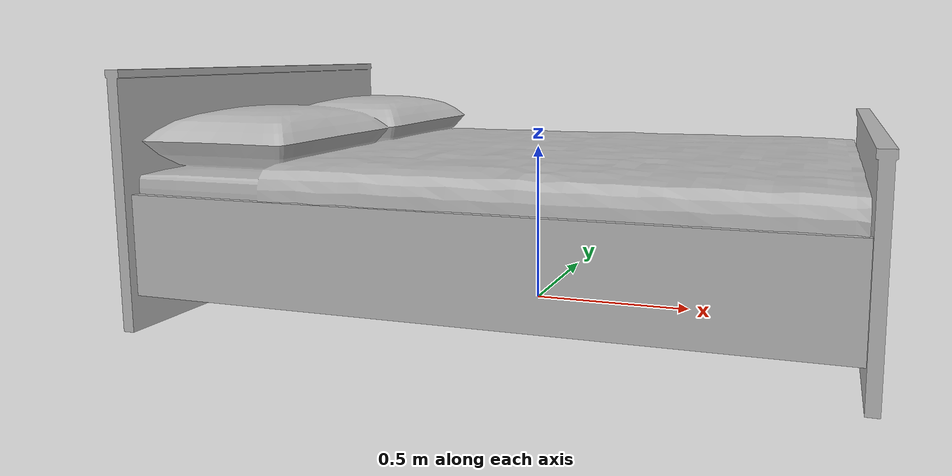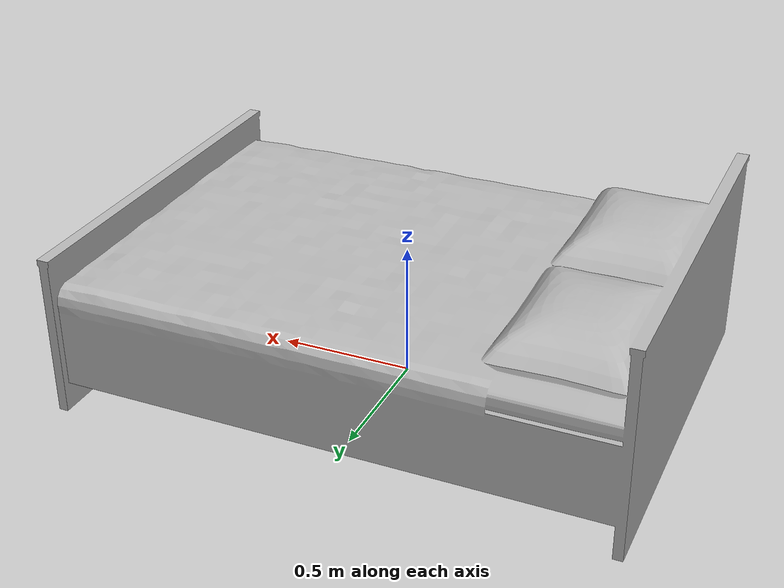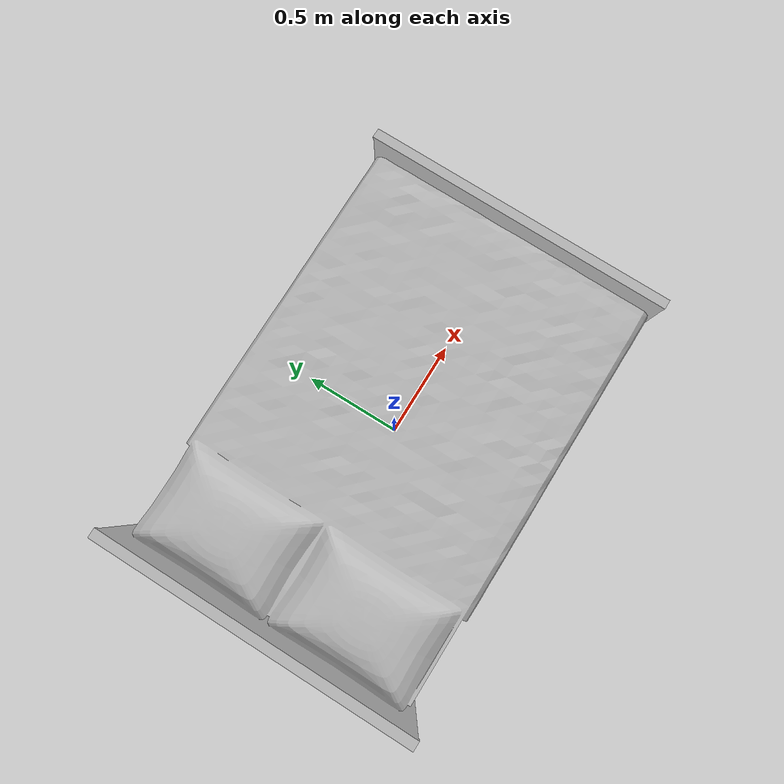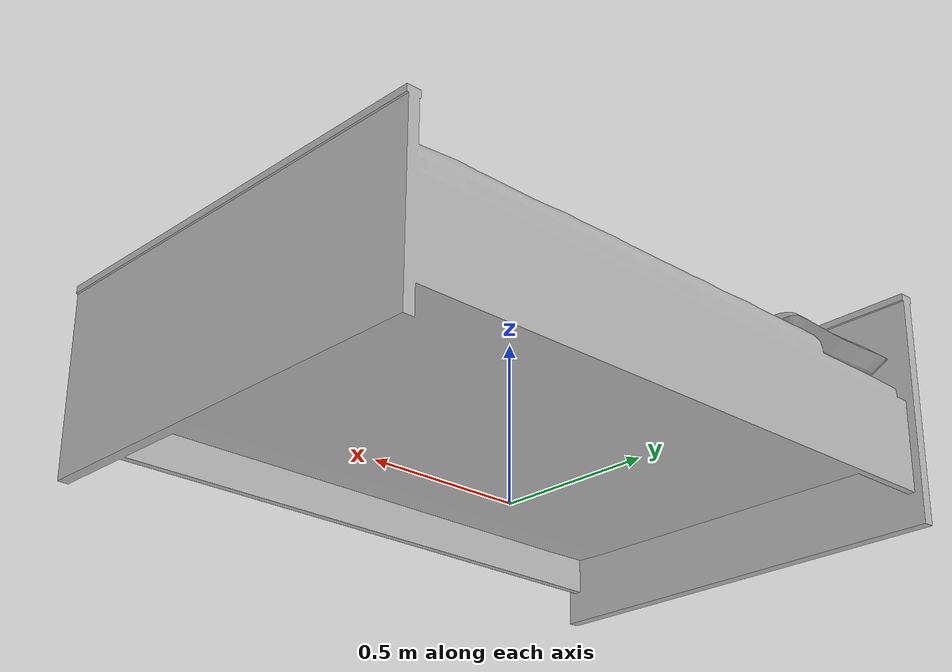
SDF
<?xml version='1.0'?>
<sdf version='1.4'>
  <model name='403'>
    <pose>0 0 0 0 0 0</pose>
    <static>true</static>
    <link name='link'>
      <collision name='collision'>
        <pose>0 0 0 0 0 0</pose>
        <geometry>
          <box>
            <size>2.07001 1.46005 2</size>
          </box>
        </geometry>
      </collision>
      <visual name='visual'>
        <pose>0 0 0 0 0 0</pose>
        <geometry>
          <mesh><uri>model://403/403.dae</uri></mesh>
        </geometry>
      </visual>
    </link>
  </model>
</sdf>
